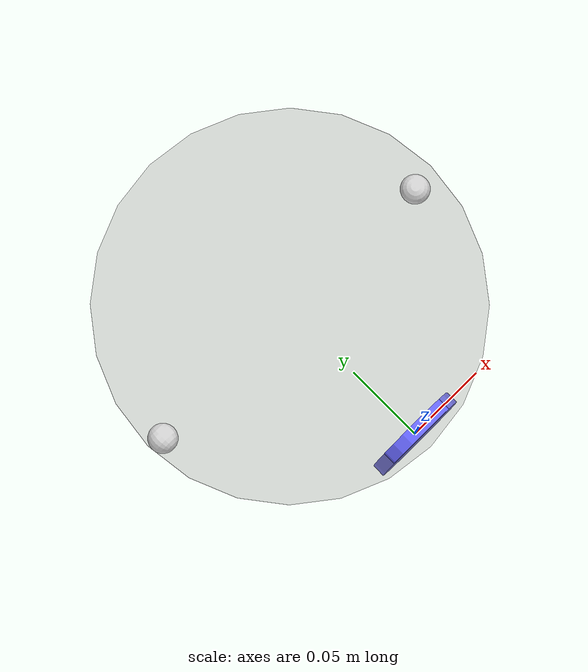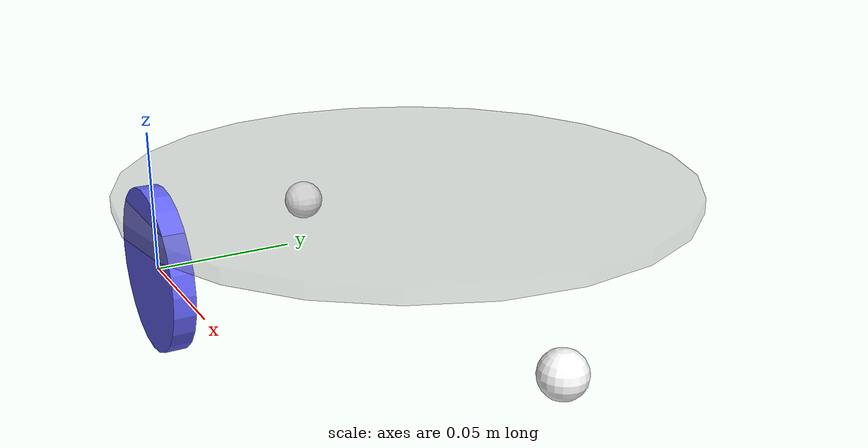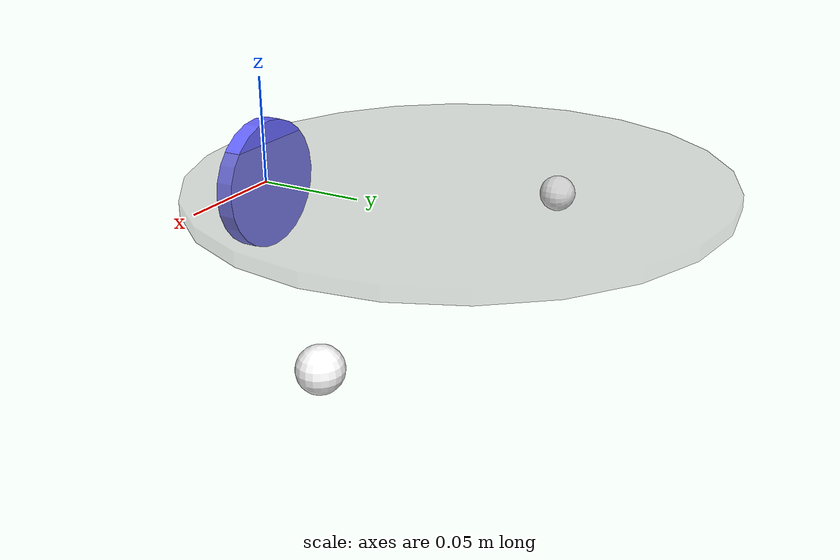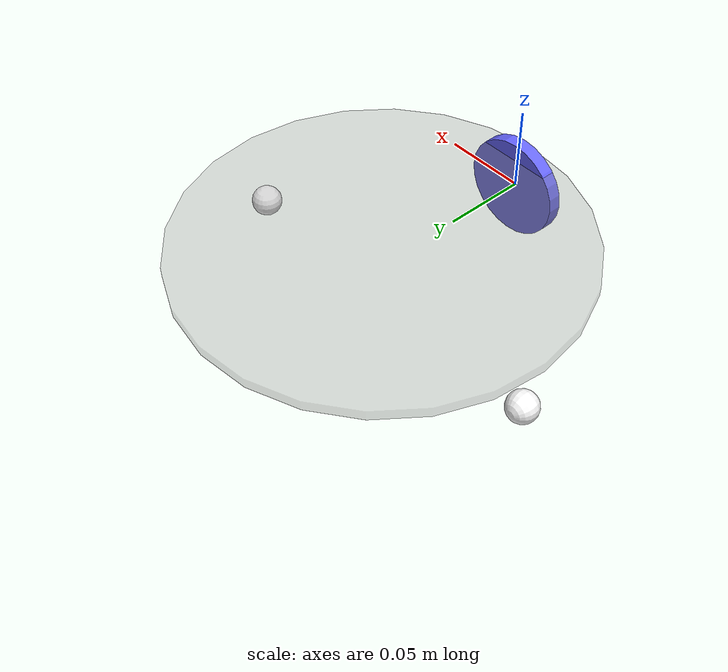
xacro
<?xml version="1.0" encoding="UTF-8" ?>
<robot name="prsg2_robot" xmlns:xacro="http://www.ros.org/wiki/xacro">

  <xacro:property name="degree" value="${pi / 180}" />
  <xacro:property name="inch" value="0.0254" />

  <xacro:property name="base_diameter" value="${9 * inch}" />
  <xacro:property name="base_thickness" value="0.006" />
  <xacro:property name="deck_height" value="0.050" />

  <xacro:property name="wheel_diameter" value="0.060" />
  <xacro:property name="wheel_thickness" value="0.008" />
  <xacro:property name="wheel_separation" value="0.205" />

  <xacro:property name="caster_diameter" value="0.018" />
  <xacro:property name="caster_thickness" value="0.018" />
  <xacro:property name="caster_setback" value="0.010" />

  <!-- servo setback is the center of the servo axis, ir setback is the centering of the sensor on servo -->
  <xacro:property name="servo_setback" value="0.002" />
  <xacro:property name="ir_setback" value="-0.015" />

  <xacro:property name="ir_left_servo_angle" value="${-45. * degree}" />
  <xacro:property name="ir_right_servo_angle" value="${30. * degree}" />

  <xacro:property name="camera_height" value="0.075" />
  <xacro:property name="camera_setback" value="0.025" />

  <xacro:macro name="material_color" params="r g b a:=1.0">
    <material name="color_${r}_${g}_${b}_{$a}">
      <color rgba="${r} ${g} ${b} ${a}" />
    </material>
  </xacro:macro>

  <xacro:macro name="polar_position" params="r theta z:=0 l0 l1 angle:=0">
    <link name="${l1}_ray_link" />
    <joint name="${l0}_to_${l1}_ray" type="fixed">
      <parent link="${l0}" />
      <child link="${l1}_ray_link" />
      <origin rpy="0 0 ${theta}" />
    </joint>
    <joint name="${l1}_ray_to_${l1}" type="fixed">
      <parent link="${l1}_ray_link" />
      <child link="${l1}" />
      <origin xyz="${r} 0 ${z}" rpy="0 0 ${angle}" />
    </joint>
  </xacro:macro>

  <xacro:macro name="polar_position_servo" params="r theta z:=0 l0 l1 l2 angle:=0">
    <link name="${l1}_ray_link" />
    <joint name="${l0}_to_${l1}_ray" type="fixed">
      <parent link="${l0}" />
      <child link="${l1}_ray_link" />
      <origin rpy="0 0 ${theta}" />
    </joint>
    <joint name="${l1}_ray_to_${l1}" type="fixed"> <!-- "revolute"> -->
      <parent link="${l1}_ray_link" />
      <child link="${l1}" />
      <origin xyz="${r} 0 ${z}" rpy="0 0 ${angle}" />
      <!-- axis of servo rotation: -->
    </joint>
    <joint name="${l2}" type="fixed">
      <parent link="${l1}" />
      <child link="${l2}" />
      <origin xyz="0 0 0" rpy="0 0 0" />
      <!-- axis of servo rotation: -->
      <axis xyz="0 0 1" />
    </joint>
  </xacro:macro>

  <!-- The robot description -->

  <link name="base_link">
    <collision>
      <origin xyz="0 0 ${deck_height - base_thickness/2}" rpy="0 0 0" />
      <geometry>
        <cylinder length="${base_thickness}" radius="${base_diameter / 2}" />
      </geometry>
    </collision>
    <visual>
      <origin xyz="0 0 ${deck_height - base_thickness/2}" rpy="0 0 0" />
      <geometry>
        <cylinder length="${base_thickness}" radius="${base_diameter / 2}" />
      </geometry>
      <xacro:material_color r="0.5" g="0.5" b="0.5" a="0.3" />
    </visual>
    <inertial>
      <origin xyz="0 0 ${deck_height - base_thickness/2}" rpy="0 0 0" />
      <mass value="1"/>
      <inertia ixx="100" ixy="0" ixz="0" iyy="100" iyz="0" izz="100" />
    </inertial>
  </link>

  <xacro:macro name="wheel" params="link_name relative_link r theta">
    <link name="${link_name}">
      <collision>
        <origin xyz="0 0 0" rpy="${90 * degree} 0 0" />
        <geometry>
          <cylinder length="${wheel_thickness}" radius="${wheel_diameter / 2}" />
        </geometry>
      </collision>
      <visual>
        <origin xyz="0 0 0" rpy="${90 * degree} 0 0" />
        <geometry>
          <cylinder length="${wheel_thickness}" radius="${wheel_diameter / 2}" />
        </geometry>
        <xacro:material_color r="0.4" g="0.4" b="1.0" />
      </visual>
      <inertial>
	<origin xyz="0 0 0" rpy="${90 * degree} 0 0" />
	<mass value="1"/>
	<inertia ixx="100" ixy="0" ixz="0" iyy="100" iyz="0" izz="100" />
      </inertial>
    </link>
    <link name="${link_name}_ray_link" />
    <joint type="fixed" name="${link_name}_ray_joint">
      <origin rpy="0 0 ${theta}" />
      <parent link="${link_name}">${link_name}</parent>
      <child link="${link_name}_ray_link">${link_name}_ray_link</child>
    </joint>
    <joint type="revolute" name="${link_name}_joint">
      <origin xyz="${r} 0 ${-wheel_diameter / 2}" rpy="0 0 ${-theta}" />
      <parent link="${link_name}_ray_link">${link_name}_ray_link</parent>
      <child link="${relative_link}">${relative_link}</child>
      <axis xyz="0 0 1" />
      <limit lower="0" upper="${pi}" velocity="1" effort="1" />
    </joint>
  </xacro:macro>

  <xacro:wheel link_name="left_wheel_link" relative_link="base_link"
    r="${wheel_separation / 2}" theta="${90 * degree}" />

  <link name="front_caster_link">
    <collision>
      <origin rpy="0 0 0" />
      <geometry>
        <sphere radius="${caster_diameter/2}" />
      </geometry>
    </collision>
    <visual>
      <origin rpy="0 0 0" />
      <geometry>
        <sphere radius="${caster_diameter/2}" />
      </geometry>
      <xacro:material_color r="1.0" g="1.0" b="1.0" />
    </visual>
    <inertial>
      <origin xyz="0 0 0" rpy="0 0 0" />
      <mass value="0.1"/>
      <inertia ixx="10" ixy="0" ixz="0" iyy="10" iyz="0" izz="10" />
    </inertial>
  </link>
  <xacro:polar_position
    r="${base_diameter/2 - caster_setback}"
    theta="${0 * degree}" angle="${0 * degree}"
    z="${caster_diameter / 2}"
    l0="base_link" l1="front_caster_link" />

  <link name="rear_caster_link">
    <collision>
      <origin rpy="${90 * degree} 0 0" />
      <geometry>
        <sphere radius="${caster_diameter/2}" />
      </geometry>
    </collision>
    <visual>
      <origin rpy="${90 * degree} 0 0" />
      <geometry>
        <sphere radius="${caster_diameter/2}" />
      </geometry>
      <xacro:material_color r="1.0" g="1.0" b="1.0" />
    </visual>
    <inertial>
      <origin xyz="0 0 0" rpy="0 0 0" />
      <mass value="0.1"/>
      <inertia ixx="10" ixy="0" ixz="0" iyy="10" iyz="0" izz="10" />
    </inertial>
  </link>
  <xacro:polar_position
    r="${base_diameter/2 - caster_setback}"
    theta="${-180 * degree}" angle="${180 * degree}"
    z="${caster_diameter / 2}"
    l0="base_link" l1="rear_caster_link" />

</robot>
